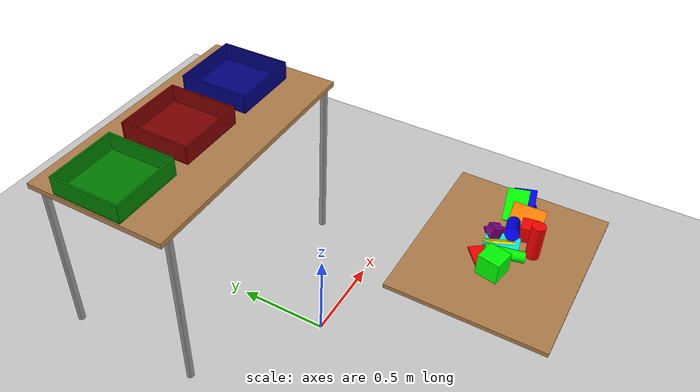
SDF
<sdf version="1.7">
 <world name="default">
  <light name="sun" type="directional">
   <pose>0 0 10 0 -0 0</pose>
   <diffuse>0.8 0.8 0.8 1</diffuse>
   <specular>0.2 0.2 0.2 1</specular>
   <attenuation>
    <range>1000</range>
    <constant>0.9</constant>
    <linear>0.01</linear>
    <quadratic>0.001</quadratic>
   </attenuation>
   <direction>-0.5 0.1 -0.9</direction>
   <spot><inner_angle>0</inner_angle><outer_angle>0</outer_angle><falloff>0</falloff></spot>
  </light>
  <model name="ground_plane">
   <static>1</static>
   <link name="link">
    <collision name="collision">
     <geometry><plane><normal>0 0 1</normal><size>100 100</size></plane></geometry>
     <surface><friction><ode><mu>100</mu><mu2>50</mu2></ode></friction></surface>
    </collision>
    <visual name="visual">
     <cast_shadows>0</cast_shadows>
     <geometry><plane><normal>0 0 1</normal><size>100 100</size></plane></geometry>
     <material>
      <script><uri>file://media/materials/scripts/gazebo.material</uri><name>Gazebo/Grey</name></script>
     </material>
    </visual>
   </link>
  </model>
  <gravity>0 0 -9.8</gravity>
  <magnetic_field>6e-06 2.3e-05 -4.2e-05</magnetic_field>
  <atmosphere type="adiabatic"/>
  <physics type="ode">
   <max_step_size>0.001</max_step_size>
   <real_time_factor>1</real_time_factor>
   <real_time_update_rate>1000</real_time_update_rate>
  </physics>
  <scene><ambient>0.4 0.4 0.4 1</ambient><background>0.7 0.7 0.7 1</background><shadows>1</shadows></scene>
  <audio><device>default</device></audio>
  <spherical_coordinates>
   <surface_model>EARTH_WGS84</surface_model>
   <latitude_deg>0</latitude_deg>
   <longitude_deg>0</longitude_deg>
   <elevation>0</elevation>
   <heading_deg>0</heading_deg>
  </spherical_coordinates>
  <model name="table">
   <static>1</static>
   <link name="link">
    <collision name="surface">
     <pose>0 0 1 0 -0 0</pose>
     <geometry><box><size>1.5 0.8 0.03</size></box></geometry>
     <surface>
      <friction><ode><mu>10</mu><mu2>5</mu2></ode></friction>
      <contact><ode><soft_cfm>0.0001</soft_cfm><soft_erp>0.4</soft_erp><kp>1e+06</kp><kd>10</kd></ode></contact>
     </surface>
    </collision>
    <visual name="visual1">
     <pose>0 0 1 0 -0 0</pose>
     <geometry><box><size>1.5 0.8 0.03</size></box></geometry>
     <material>
      <script><uri>file://media/materials/scripts/gazebo.material</uri><name>Gazebo/Wood</name></script>
     </material>
    </visual>
    <collision name="front_left_leg">
     <pose>0.68 0.38 0.5 0 -0 0</pose>
     <geometry><cylinder><radius>0.02</radius><length>1</length></cylinder></geometry>
    </collision>
    <visual name="front_left_leg">
     <pose>0.68 0.38 0.5 0 -0 0</pose>
     <geometry><cylinder><radius>0.02</radius><length>1</length></cylinder></geometry>
     <material>
      <script><uri>file://media/materials/scripts/gazebo.material</uri><name>Gazebo/Grey</name></script>
     </material>
    </visual>
    <collision name="front_right_leg">
     <pose>0.68 -0.38 0.5 0 -0 0</pose>
     <geometry><cylinder><radius>0.02</radius><length>1</length></cylinder></geometry>
    </collision>
    <visual name="front_right_leg">
     <pose>0.68 -0.38 0.5 0 -0 0</pose>
     <geometry><cylinder><radius>0.02</radius><length>1</length></cylinder></geometry>
     <material>
      <script><uri>file://media/materials/scripts/gazebo.material</uri><name>Gazebo/Grey</name></script>
     </material>
    </visual>
    <collision name="back_right_leg">
     <pose>-0.68 -0.38 0.5 0 -0 0</pose>
     <geometry><cylinder><radius>0.02</radius><length>1</length></cylinder></geometry>
    </collision>
    <visual name="back_right_leg">
     <pose>-0.68 -0.38 0.5 0 -0 0</pose>
     <geometry><cylinder><radius>0.02</radius><length>1</length></cylinder></geometry>
     <material>
      <script><uri>file://media/materials/scripts/gazebo.material</uri><name>Gazebo/Grey</name></script>
     </material>
    </visual>
    <collision name="back_left_leg">
     <pose>-0.68 0.38 0.5 0 -0 0</pose>
     <geometry><cylinder><radius>0.02</radius><length>1</length></cylinder></geometry>
    </collision>
    <visual name="back_left_leg">
     <pose>-0.68 0.38 0.5 0 -0 0</pose>
     <geometry><cylinder><radius>0.02</radius><length>1</length></cylinder></geometry>
     <material>
      <script><uri>file://media/materials/scripts/gazebo.material</uri><name>Gazebo/Grey</name></script>
     </material>
    </visual>
    <inertial>
     <inertia><ixx>1</ixx><ixy>0</ixy><ixz>0</ixz><iyy>1</iyy><iyz>0</iyz><izz>1</izz></inertia>
     <mass>50</mass>
    </inertial>
   </link>
   <pose>0.056083 0.801191 -1.2e-05 0 -0 2.5e-05</pose>
  </model>
  <plugin name="gazebo_link_attacher" filename="libgazebo_link_attacher.so"/>
  <plugin name="gazebo_ros_state" filename="libgazebo_ros_state.so">
   <namespace>/gazebo</namespace>
   <update_rate>100</update_rate>
  </plugin>
  <model name="cube_b">
   <link name="link_2">
    <inertial>
     <mass>2</mass>
     <inertia>
      <ixx>0.00083333</ixx>
      <ixy>0</ixy>
      <ixz>0</ixz>
      <iyy>0.00083333</iyy>
      <iyz>0</iyz>
      <izz>0.00083333</izz>
     </inertia>
    </inertial>
    <visual name="visual">
     <geometry><box><size>0.05 0.05 0.05</size></box></geometry>
     <material>
      <lighting>1</lighting>
      <script><uri>file://media/materials/scripts/gazebo.material</uri><name>Gazebo/Grey</name></script>
      <ambient>0 0 1 1</ambient>
      <diffuse>0 0 1 1</diffuse>
      <specular>0 0 0 1</specular>
      <emissive>0 0 0 1</emissive>
      <shader type="vertex"><normal_map>__default__</normal_map></shader>
     </material>
    </visual>
    <collision name="collision">
     <geometry><box><size>0.05 0.05 0.05</size></box></geometry>
     <surface>
      <friction>
       <ode><mu>0.8</mu><mu2>0.8</mu2><fdir1>0 0 0</fdir1><slip1>0</slip1><slip2>0</slip2></ode>
       <torsional>
        <coefficient>1</coefficient>
        <patch_radius>0</patch_radius>
        <surface_radius>0</surface_radius>
        <use_patch_radius>1</use_patch_radius>
        <ode><slip>0</slip></ode>
       </torsional>
      </friction>
      <bounce><restitution_coefficient>0</restitution_coefficient><threshold>1e+06</threshold></bounce>
      <contact>
       <collide_without_contact>0</collide_without_contact>
       <collide_without_contact_bitmask>1</collide_without_contact_bitmask>
       <collide_bitmask>1</collide_bitmask>
       <ode>
        <soft_cfm>0.0001</soft_cfm>
        <soft_erp>0.4</soft_erp>
        <kp>1e+06</kp>
        <kd>10</kd>
        <max_vel>0.01</max_vel>
        <min_depth>0</min_depth>
       </ode>
      </contact>
     </surface>
    </collision>
   </link>
   <static>0</static>
   <allow_auto_disable>0</allow_auto_disable>
   <pose>0.330733 -0.878025 1.02198 -2.45913 0.002548 -1.6654</pose>
  </model>
  <model name="cube_g">
   <link name="link_2">
    <inertial>
     <mass>2</mass>
     <inertia>
      <ixx>0.00333333</ixx>
      <iyy>0.00333333</iyy>
      <izz>0.00333333</izz>
      <ixy>0</ixy>
      <ixz>0</ixz>
      <iyz>0</iyz>
     </inertia>
    </inertial>
    <visual name="visual">
     <geometry><box><size>0.1 0.1 0.1</size></box></geometry>
     <material>
      <lighting>1</lighting>
      <script><uri>file://media/materials/scripts/gazebo.material</uri><name>Gazebo/Grey</name></script>
      <ambient>0 1 0 1</ambient>
      <diffuse>0 1 0 1</diffuse>
      <specular>0 0 0 1</specular>
      <emissive>0 0 0 1</emissive>
      <shader type="vertex"><normal_map>__default__</normal_map></shader>
     </material>
    </visual>
    <collision name="collision">
     <geometry><box><size>0.1 0.1 0.1</size></box></geometry>
     <surface>
      <friction>
       <ode><mu>0.8</mu><mu2>0.8</mu2><fdir1>0 0 0</fdir1><slip1>0</slip1><slip2>0</slip2></ode>
       <torsional>
        <coefficient>1</coefficient>
        <patch_radius>0</patch_radius>
        <surface_radius>0</surface_radius>
        <use_patch_radius>1</use_patch_radius>
        <ode><slip>0</slip></ode>
       </torsional>
      </friction>
      <bounce><restitution_coefficient>0</restitution_coefficient><threshold>1e+06</threshold></bounce>
      <contact>
       <collide_without_contact>0</collide_without_contact>
       <collide_without_contact_bitmask>1</collide_without_contact_bitmask>
       <collide_bitmask>1</collide_bitmask>
       <ode>
        <soft_cfm>0.0001</soft_cfm>
        <soft_erp>0.4</soft_erp>
        <kp>1e+06</kp>
        <kd>10</kd>
        <max_vel>0.01</max_vel>
        <min_depth>0</min_depth>
       </ode>
      </contact>
     </surface>
    </collision>
   </link>
   <static>0</static>
   <allow_auto_disable>0</allow_auto_disable>
   <pose>-0.099374 -0.869387 1.045 0.002717 0.003495 -1.76675</pose>
  </model>
  <model name="cube_r">
   <link name="link_2">
    <inertial>
     <mass>2</mass>
     <inertia>
      <ixx>0.001875</ixx>
      <ixy>0</ixy>
      <ixz>0</ixz>
      <iyy>0.001875</iyy>
      <iyz>0</iyz>
      <izz>0.001875</izz>
     </inertia>
    </inertial>
    <visual name="visual">
     <geometry><box><size>0.075 0.075 0.075</size></box></geometry>
     <material>
      <lighting>1</lighting>
      <script><uri>file://media/materials/scripts/gazebo.material</uri><name>Gazebo/Grey</name></script>
      <ambient>1 0 0 1</ambient>
      <diffuse>1 0 0 1</diffuse>
      <specular>0 0 0 1</specular>
      <emissive>0 0 0 1</emissive>
      <shader type="vertex"><normal_map>__default__</normal_map></shader>
     </material>
    </visual>
    <collision name="collision">
     <geometry><box><size>0.075 0.075 0.075</size></box></geometry>
     <surface>
      <friction>
       <ode><mu>0.8</mu><mu2>0.8</mu2><fdir1>0 0 0</fdir1><slip1>0</slip1><slip2>0</slip2></ode>
       <torsional>
        <coefficient>1</coefficient>
        <patch_radius>0</patch_radius>
        <surface_radius>0</surface_radius>
        <use_patch_radius>1</use_patch_radius>
        <ode><slip>0</slip></ode>
       </torsional>
      </friction>
      <bounce><restitution_coefficient>0</restitution_coefficient><threshold>1e+06</threshold></bounce>
      <contact>
       <collide_without_contact>0</collide_without_contact>
       <collide_without_contact_bitmask>1</collide_without_contact_bitmask>
       <collide_bitmask>1</collide_bitmask>
       <ode>
        <soft_cfm>0.0001</soft_cfm>
        <soft_erp>0.4</soft_erp>
        <kp>1e+06</kp>
        <kd>10</kd>
        <max_vel>0.01</max_vel>
        <min_depth>0</min_depth>
       </ode>
      </contact>
     </surface>
    </collision>
   </link>
   <static>0</static>
   <allow_auto_disable>0</allow_auto_disable>
   <pose>0.187375 -0.928799 1.02377 -3.14115 -0.004198 0.166777</pose>
  </model>
  <model name="cylinder_r">
   <link name="link_0">
    <inertial>
     <mass>0.2</mass>
     <inertia>
      <ixx>0.0005267</ixx>
      <ixy>0</ixy>
      <ixz>0</ixz>
      <iyy>0.0005267</iyy>
      <iyz>0</iyz>
      <izz>9e-05</izz>
     </inertia>
    </inertial>
    <visual name="visual">
     <geometry><cylinder><radius>0.03</radius><length>0.17</length></cylinder></geometry>
     <material>
      <lighting>1</lighting>
      <script><uri>file://media/materials/scripts/gazebo.material</uri><name>Gazebo/Grey</name></script>
      <ambient>1 0 0 1</ambient>
      <diffuse>1 0 0 1</diffuse>
      <specular>0 0 0 1</specular>
      <emissive>0 0 0 1</emissive>
      <shader type="vertex"><normal_map>__default__</normal_map></shader>
     </material>
    </visual>
    <collision name="collision">
     <geometry><cylinder><radius>0.03</radius><length>0.17</length></cylinder></geometry>
     <surface>
      <friction>
       <ode><mu>0.5</mu><mu2>0.5</mu2><fdir1>0 0 0</fdir1><slip1>0</slip1><slip2>0</slip2></ode>
       <torsional>
        <coefficient>1</coefficient>
        <patch_radius>0</patch_radius>
        <surface_radius>0</surface_radius>
        <use_patch_radius>1</use_patch_radius>
        <ode><slip>0</slip></ode>
       </torsional>
      </friction>
      <bounce><restitution_coefficient>0</restitution_coefficient><threshold>1e+06</threshold></bounce>
      <contact>
       <collide_without_contact>0</collide_without_contact>
       <collide_without_contact_bitmask>1</collide_without_contact_bitmask>
       <collide_bitmask>1</collide_bitmask>
       <ode>
        <soft_cfm>0.0001</soft_cfm>
        <soft_erp>0.4</soft_erp>
        <kp>1e+06</kp>
        <kd>10</kd>
        <max_vel>0.01</max_vel>
        <min_depth>0</min_depth>
       </ode>
      </contact>
     </surface>
    </collision>
   </link>
   <static>0</static>
   <allow_auto_disable>0</allow_auto_disable>
   <pose>0.08945 -0.98157 1.07081 -0.003488 -0.002527 1.2082</pose>
  </model>
  <model name="cylinder_b">
   <link name="link_0">
    <inertial>
     <mass>0.2</mass>
     <inertia>
      <ixx>0.0005267</ixx>
      <ixy>0</ixy>
      <ixz>0</ixz>
      <iyy>0.0005267</iyy>
      <iyz>0</iyz>
      <izz>9e-05</izz>
     </inertia>
    </inertial>
    <visual name="visual">
     <geometry><cylinder><radius>0.03</radius><length>0.17</length></cylinder></geometry>
     <material>
      <lighting>1</lighting>
      <ambient>0 0 1 1</ambient>
      <diffuse>0 0 1 1</diffuse>
      <specular>0.1 0.1 0.1 1</specular>
      <emissive>0 0 0 1</emissive>
      <shader type="vertex"><normal_map>__default__</normal_map></shader>
     </material>
    </visual>
    <collision name="collision">
     <geometry><cylinder><radius>0.03</radius><length>0.17</length></cylinder></geometry>
     <surface>
      <friction>
       <ode><mu>0.4</mu><mu2>0.4</mu2><fdir1>0 0 0</fdir1><slip1>0</slip1><slip2>0</slip2></ode>
       <torsional>
        <coefficient>1</coefficient>
        <patch_radius>0</patch_radius>
        <surface_radius>0</surface_radius>
        <use_patch_radius>1</use_patch_radius>
        <ode><slip>0</slip></ode>
       </torsional>
      </friction>
      <bounce><restitution_coefficient>0</restitution_coefficient><threshold>1e+06</threshold></bounce>
      <contact>
       <collide_without_contact>0</collide_without_contact>
       <collide_without_contact_bitmask>1</collide_without_contact_bitmask>
       <collide_bitmask>1</collide_bitmask>
       <ode>
        <soft_cfm>0.0001</soft_cfm>
        <soft_erp>0.4</soft_erp>
        <kp>1e+06</kp>
        <kd>10</kd>
        <max_vel>0.01</max_vel>
        <min_depth>0</min_depth>
       </ode>
      </contact>
     </surface>
    </collision>
   </link>
   <static>0</static>
   <allow_auto_disable>0</allow_auto_disable>
   <pose>0.13914 -0.868422 1.04845 -3.09774 1.15074 -2.86897</pose>
  </model>
  <model name="cylinder_g">
   <link name="link_0">
    <inertial>
     <mass>0.2</mass>
     <inertia>
      <ixx>0.0005129</ixx>
      <ixy>0</ixy>
      <ixz>0</ixz>
      <iyy>0.0005129</iyy>
      <iyz>0</iyz>
      <izz>6.25e-05</izz>
     </inertia>
    </inertial>
    <visual name="visual">
     <geometry><cylinder><radius>0.025</radius><length>0.17</length></cylinder></geometry>
     <material>
      <lighting>1</lighting>
      <ambient>0 1 0 1</ambient>
      <diffuse>0 1 0 1</diffuse>
      <specular>0.1 0.1 0.1 1</specular>
      <emissive>0 0 0 1</emissive>
      <shader type="vertex"><normal_map>__default__</normal_map></shader>
     </material>
    </visual>
    <collision name="collision">
     <geometry><cylinder><radius>0.025</radius><length>0.17</length></cylinder></geometry>
     <surface>
      <friction>
       <ode><mu>0.5</mu><mu2>0.5</mu2><fdir1>0 0 0</fdir1><slip1>0</slip1><slip2>0</slip2></ode>
       <torsional>
        <coefficient>1</coefficient>
        <patch_radius>0</patch_radius>
        <surface_radius>0</surface_radius>
        <use_patch_radius>1</use_patch_radius>
        <ode><slip>0</slip></ode>
       </torsional>
      </friction>
      <bounce><restitution_coefficient>0</restitution_coefficient><threshold>1e+06</threshold></bounce>
      <contact>
       <collide_without_contact>0</collide_without_contact>
       <collide_without_contact_bitmask>1</collide_without_contact_bitmask>
       <collide_bitmask>1</collide_bitmask>
       <ode>
        <soft_cfm>0.0001</soft_cfm>
        <soft_erp>0.4</soft_erp>
        <kp>1e+06</kp>
        <kd>10</kd>
        <max_vel>0.01</max_vel>
        <min_depth>0</min_depth>
       </ode>
      </contact>
     </surface>
    </collision>
   </link>
   <static>0</static>
   <allow_auto_disable>0</allow_auto_disable>
   <pose>0.010341 -0.883497 1.01755 1.4875 -0.092982 -2.85356</pose>
  </model>
  <model name="cuboid_r">
   <link name="link">
    <inertial>
     <mass>2</mass>
     <inertia>
      <ixx>0.001683</ixx>
      <iyy>0.003767</iyy>
      <izz>0.005417</izz>
      <ixy>0</ixy>
      <ixz>0</ixz>
      <iyz>0</iyz>
     </inertia>
    </inertial>
    <visual name="visual">
     <geometry><box><size>0.15 0.1 0.01</size></box></geometry>
     <material><ambient>1 0 0 1</ambient><diffuse>1 0 0 1</diffuse><specular>0.1 0.1 0.1 1</specular></material>
    </visual>
    <collision name="collision">
     <geometry><box><size>0.15 0.1 0.01</size></box></geometry>
     <surface>
      <friction>
       <ode><mu>0.6</mu><mu2>0.6</mu2><fdir1>0 0 0</fdir1><slip1>0</slip1><slip2>0</slip2></ode>
       <torsional>
        <coefficient>1</coefficient>
        <patch_radius>0</patch_radius>
        <surface_radius>0</surface_radius>
        <use_patch_radius>1</use_patch_radius>
        <ode><slip>0</slip></ode>
       </torsional>
      </friction>
      <bounce><restitution_coefficient>0</restitution_coefficient><threshold>1e+06</threshold></bounce>
      <contact>
       <collide_without_contact>0</collide_without_contact>
       <collide_without_contact_bitmask>1</collide_without_contact_bitmask>
       <collide_bitmask>1</collide_bitmask>
       <ode>
        <soft_cfm>0.0001</soft_cfm>
        <soft_erp>0.4</soft_erp>
        <kp>1e+06</kp>
        <kd>10</kd>
        <max_vel>0.01</max_vel>
        <min_depth>0</min_depth>
       </ode>
      </contact>
     </surface>
    </collision>
   </link>
   <static>0</static>
   <allow_auto_disable>0</allow_auto_disable>
   <pose>-0.036416 -0.815225 0.990361 3.3e-05 0.00373 -2.45569</pose>
  </model>
  <model name="cuboid_g">
   <link name="link">
    <inertial>
     <mass>2</mass>
     <inertia>
      <ixx>0.001683</ixx>
      <iyy>0.003767</iyy>
      <izz>0.005417</izz>
      <ixy>0</ixy>
      <ixz>0</ixz>
      <iyz>0</iyz>
     </inertia>
    </inertial>
    <visual name="visual">
     <geometry><box><size>0.15 0.1 0.01</size></box></geometry>
     <material><ambient>0 1 0 1</ambient><diffuse>0 1 0 1</diffuse><specular>0.1 0.1 0.1 1</specular></material>
    </visual>
    <collision name="collision">
     <geometry><box><size>0.15 0.1 0.01</size></box></geometry>
     <surface>
      <friction>
       <ode><mu>0.6</mu><mu2>0.6</mu2><fdir1>0 0 0</fdir1><slip1>0</slip1><slip2>0</slip2></ode>
       <torsional>
        <coefficient>1</coefficient>
        <patch_radius>0</patch_radius>
        <surface_radius>0</surface_radius>
        <use_patch_radius>1</use_patch_radius>
        <ode><slip>0</slip></ode>
       </torsional>
      </friction>
      <bounce><restitution_coefficient>0</restitution_coefficient><threshold>1e+06</threshold></bounce>
      <contact>
       <collide_without_contact>0</collide_without_contact>
       <collide_without_contact_bitmask>1</collide_without_contact_bitmask>
       <collide_bitmask>1</collide_bitmask>
       <ode>
        <soft_cfm>0.0001</soft_cfm>
        <soft_erp>0.4</soft_erp>
        <kp>1e+06</kp>
        <kd>10</kd>
        <max_vel>0.01</max_vel>
        <min_depth>0</min_depth>
       </ode>
      </contact>
     </surface>
    </collision>
   </link>
   <static>0</static>
   <allow_auto_disable>0</allow_auto_disable>
   <pose>0.297583 -0.827856 1.04362 -2.96329 0.662651 -2.92437</pose>
  </model>
  <model name="cuboid_b">
   <link name="link">
    <inertial>
     <mass>2</mass>
     <inertia>
      <ixx>0.001683</ixx>
      <iyy>0.003767</iyy>
      <izz>0.005417</izz>
      <ixy>0</ixy>
      <ixz>0</ixz>
      <iyz>0</iyz>
     </inertia>
    </inertial>
    <visual name="visual">
     <geometry><box><size>0.15 0.1 0.01</size></box></geometry>
     <material><ambient>0 0 1 1</ambient><diffuse>0 0 1 1</diffuse><specular>0.1 0.1 0.1 1</specular></material>
    </visual>
    <collision name="collision">
     <geometry><box><size>0.15 0.1 0.01</size></box></geometry>
     <surface>
      <friction>
       <ode><mu>0.6</mu><mu2>0.6</mu2><fdir1>0 0 0</fdir1><slip1>0</slip1><slip2>0</slip2></ode>
       <torsional>
        <coefficient>1</coefficient>
        <patch_radius>0</patch_radius>
        <surface_radius>0</surface_radius>
        <use_patch_radius>1</use_patch_radius>
        <ode><slip>0</slip></ode>
       </torsional>
      </friction>
      <bounce><restitution_coefficient>0</restitution_coefficient><threshold>1e+06</threshold></bounce>
      <contact>
       <collide_without_contact>0</collide_without_contact>
       <collide_without_contact_bitmask>1</collide_without_contact_bitmask>
       <collide_bitmask>1</collide_bitmask>
       <ode>
        <soft_cfm>0.0001</soft_cfm>
        <soft_erp>0.4</soft_erp>
        <kp>1e+06</kp>
        <kd>10</kd>
        <max_vel>0.01</max_vel>
        <min_depth>0</min_depth>
       </ode>
      </contact>
     </surface>
    </collision>
   </link>
   <static>0</static>
   <allow_auto_disable>0</allow_auto_disable>
   <pose>0.313383 -0.854866 1.04476 2.9265 -0.656147 0.252008</pose>
  </model>
  <model name="cuboid_purple">
   <link name="link">
    <inertial>
     <mass>2</mass>
     <inertia>
      <ixx>0.001683</ixx>
      <iyy>0.003767</iyy>
      <izz>0.005417</izz>
      <ixy>0</ixy>
      <ixz>0</ixz>
      <iyz>0</iyz>
     </inertia>
    </inertial>
    <visual name="visual">
     <geometry><box><size>0.15 0.1 0.01</size></box></geometry>
     <material>
      <ambient>0.5 0 0.5 1</ambient>
      <diffuse>0.5 0 0.5 1</diffuse>
      <specular>0.1 0.1 0.1 1</specular>
     </material>
    </visual>
    <collision name="collision">
     <geometry><box><size>0.15 0.1 0.01</size></box></geometry>
     <surface>
      <friction>
       <ode><mu>0.6</mu><mu2>0.6</mu2><fdir1>0 0 0</fdir1><slip1>0</slip1><slip2>0</slip2></ode>
       <torsional>
        <coefficient>1</coefficient>
        <patch_radius>0</patch_radius>
        <surface_radius>0</surface_radius>
        <use_patch_radius>1</use_patch_radius>
        <ode><slip>0</slip></ode>
       </torsional>
      </friction>
      <bounce><restitution_coefficient>0</restitution_coefficient><threshold>1e+06</threshold></bounce>
      <contact>
       <collide_without_contact>0</collide_without_contact>
       <collide_without_contact_bitmask>1</collide_without_contact_bitmask>
       <collide_bitmask>1</collide_bitmask>
       <ode>
        <soft_cfm>0.0001</soft_cfm>
        <soft_erp>0.4</soft_erp>
        <kp>1e+06</kp>
        <kd>10</kd>
        <max_vel>0.01</max_vel>
        <min_depth>0</min_depth>
       </ode>
      </contact>
     </surface>
    </collision>
   </link>
   <static>0</static>
   <allow_auto_disable>0</allow_auto_disable>
   <pose>0.104007 -0.8268 0.995924 -0.098044 0.002228 -2.54408</pose>
  </model>
  <model name="cuboid_orange">
   <link name="link">
    <inertial>
     <mass>2</mass>
     <inertia>
      <ixx>0.001683</ixx>
      <iyy>0.003767</iyy>
      <izz>0.005417</izz>
      <ixy>0</ixy>
      <ixz>0</ixz>
      <iyz>0</iyz>
     </inertia>
    </inertial>
    <visual name="visual">
     <geometry><box><size>0.15 0.1 0.01</size></box></geometry>
     <material>
      <ambient>1 0.5 0 1</ambient>
      <diffuse>1 0.5 0 1</diffuse>
      <specular>0.1 0.1 0.1 1</specular>
     </material>
    </visual>
    <collision name="collision">
     <geometry><box><size>0.15 0.1 0.01</size></box></geometry>
     <surface>
      <friction>
       <ode><mu>0.6</mu><mu2>0.6</mu2><fdir1>0 0 0</fdir1><slip1>0</slip1><slip2>0</slip2></ode>
       <torsional>
        <coefficient>1</coefficient>
        <patch_radius>0</patch_radius>
        <surface_radius>0</surface_radius>
        <use_patch_radius>1</use_patch_radius>
        <ode><slip>0</slip></ode>
       </torsional>
      </friction>
      <bounce><restitution_coefficient>0</restitution_coefficient><threshold>1e+06</threshold></bounce>
      <contact>
       <collide_without_contact>0</collide_without_contact>
       <collide_without_contact_bitmask>1</collide_without_contact_bitmask>
       <collide_bitmask>1</collide_bitmask>
       <ode>
        <soft_cfm>0.0001</soft_cfm>
        <soft_erp>0.4</soft_erp>
        <kp>1e+06</kp>
        <kd>10</kd>
        <max_vel>0.01</max_vel>
        <min_depth>0</min_depth>
       </ode>
      </contact>
     </surface>
    </collision>
   </link>
   <static>0</static>
   <allow_auto_disable>0</allow_auto_disable>
   <pose>0.262888 -0.894497 1.02903 2.48367 -0.110194 1.73807</pose>
  </model>
  <model name="cuboid_yellow">
   <link name="link">
    <inertial>
     <mass>2</mass>
     <inertia>
      <ixx>0.001683</ixx>
      <iyy>0.003767</iyy>
      <izz>0.005417</izz>
      <ixy>0</ixy>
      <ixz>0</ixz>
      <iyz>0</iyz>
     </inertia>
    </inertial>
    <visual name="visual">
     <geometry><box><size>0.15 0.1 0.01</size></box></geometry>
     <material><ambient>1 1 0 1</ambient><diffuse>1 1 0 1</diffuse><specular>0.1 0.1 0.1 1</specular></material>
    </visual>
    <collision name="collision">
     <geometry><box><size>0.15 0.1 0.01</size></box></geometry>
     <surface>
      <friction>
       <ode><mu>0.6</mu><mu2>0.6</mu2><fdir1>0 0 0</fdir1><slip1>0</slip1><slip2>0</slip2></ode>
       <torsional>
        <coefficient>1</coefficient>
        <patch_radius>0</patch_radius>
        <surface_radius>0</surface_radius>
        <use_patch_radius>1</use_patch_radius>
        <ode><slip>0</slip></ode>
       </torsional>
      </friction>
      <bounce><restitution_coefficient>0</restitution_coefficient><threshold>1e+06</threshold></bounce>
      <contact>
       <collide_without_contact>0</collide_without_contact>
       <collide_without_contact_bitmask>1</collide_without_contact_bitmask>
       <collide_bitmask>1</collide_bitmask>
       <ode>
        <soft_cfm>0.0001</soft_cfm>
        <soft_erp>0.4</soft_erp>
        <kp>1e+06</kp>
        <kd>10</kd>
        <max_vel>0.01</max_vel>
        <min_depth>0</min_depth>
       </ode>
      </contact>
     </surface>
    </collision>
   </link>
   <static>0</static>
   <allow_auto_disable>0</allow_auto_disable>
   <pose>0.014395 -0.848743 1.06543 -0.127874 -0.689085 -2.53236</pose>
  </model>
  <model name="cuboid_cyan">
   <link name="link">
    <inertial>
     <mass>2</mass>
     <inertia>
      <ixx>0.001683</ixx>
      <iyy>0.003767</iyy>
      <izz>0.005417</izz>
      <ixy>0</ixy>
      <ixz>0</ixz>
      <iyz>0</iyz>
     </inertia>
    </inertial>
    <visual name="visual">
     <geometry><box><size>0.15 0.1 0.01</size></box></geometry>
     <material><ambient>0 1 1 1</ambient><diffuse>0 1 1 1</diffuse><specular>0.1 0.1 0.1 1</specular></material>
    </visual>
    <collision name="collision">
     <geometry><box><size>0.15 0.1 0.01</size></box></geometry>
     <surface>
      <friction>
       <ode><mu>0.6</mu><mu2>0.6</mu2><fdir1>0 0 0</fdir1><slip1>0</slip1><slip2>0</slip2></ode>
       <torsional>
        <coefficient>1</coefficient>
        <patch_radius>0</patch_radius>
        <surface_radius>0</surface_radius>
        <use_patch_radius>1</use_patch_radius>
        <ode><slip>0</slip></ode>
       </torsional>
      </friction>
      <bounce><restitution_coefficient>0</restitution_coefficient><threshold>1e+06</threshold></bounce>
      <contact>
       <collide_without_contact>0</collide_without_contact>
       <collide_without_contact_bitmask>1</collide_without_contact_bitmask>
       <collide_bitmask>1</collide_bitmask>
       <ode>
        <soft_cfm>0.0001</soft_cfm>
        <soft_erp>0.4</soft_erp>
        <kp>1e+06</kp>
        <kd>10</kd>
        <max_vel>0.01</max_vel>
        <min_depth>0</min_depth>
       </ode>
      </contact>
     </surface>
    </collision>
   </link>
   <static>0</static>
   <allow_auto_disable>0</allow_auto_disable>
   <pose>0.084491 -0.846328 1.00527 -0.038497 0.090248 -1.40038</pose>
  </model>
  <model name="workspace">
   <link name="link">
    <inertial>
     <mass>100</mass>
     <inertia><ixx>6.02417</ixx><ixy>0</ixy><ixz>0</ixz><iyy>4.08667</iyy><iyz>0</iyz><izz>10.1042</izz></inertia>
    </inertial>
    <visual name="visual">
     <geometry><box><size>0.7 0.85 0.02</size></box></geometry>
     <material>
      <script><name>Gazebo/Wood</name><uri>file://media/materials/scripts/gazebo.material</uri></script>
      <shader type="pixel"/>
     </material>
    </visual>
    <collision name="collision">
     <geometry><box><size>0.7 0.85 0.02</size></box></geometry>
     <surface>
      <friction>
       <ode><mu>100</mu><mu2>50</mu2><fdir1>0 0 0</fdir1><slip1>0</slip1><slip2>0</slip2></ode>
       <torsional>
        <coefficient>1</coefficient>
        <patch_radius>0</patch_radius>
        <surface_radius>0</surface_radius>
        <use_patch_radius>1</use_patch_radius>
        <ode><slip>0</slip></ode>
       </torsional>
      </friction>
      <bounce><restitution_coefficient>0</restitution_coefficient><threshold>1e+06</threshold></bounce>
      <contact>
       <collide_without_contact>0</collide_without_contact>
       <collide_without_contact_bitmask>1</collide_without_contact_bitmask>
       <collide_bitmask>1</collide_bitmask>
       <ode>
        <soft_cfm>0.0001</soft_cfm>
        <soft_erp>0.2</soft_erp>
        <kp>1e+13</kp>
        <kd>10</kd>
        <max_vel>0.01</max_vel>
        <min_depth>0</min_depth>
       </ode>
       <bullet>
        <split_impulse>1</split_impulse>
        <split_impulse_penetration_threshold>-0.01</split_impulse_penetration_threshold>
        <soft_cfm>0</soft_cfm>
        <soft_erp>0.2</soft_erp>
        <kp>1e+13</kp>
        <kd>1</kd>
       </bullet>
      </contact>
     </surface>
    </collision>
   </link>
   <static>1</static>
   <pose>0.0416 -0.859914 0.975746 -0.004154 -0.001127 1.57039</pose>
  </model>
  <model name="tray_red">
   <static>1</static>
   <link name="link">
    <collision name="base_collision">
     <pose>0 0 0.01 0 -0 0</pose>
     <geometry><box><size>0.4 0.4 0.01</size></box></geometry>
     <surface><contact><ode><mu>50</mu><mu2>50</mu2></ode></contact></surface>
    </collision>
    <visual name="base_visual">
     <pose>0 0 0.01 0 -0 0</pose>
     <geometry><box><size>0.4 0.4 0.01</size></box></geometry>
     <material>
      <ambient>1 0 0 1</ambient>
      <diffuse>0.5 0 0 1</diffuse>
      <specular>0 0 0 1</specular>
      <emissive>0 0 0 1</emissive>
      <shininess>100</shininess>
     </material>
    </visual>
    <collision name="front_collision">
     <pose>0 0.195 0.06 0 -0 0</pose>
     <geometry><box><size>0.4 0.01 0.1</size></box></geometry>
    </collision>
    <visual name="front_visual">
     <pose>0 0.195 0.06 0 -0 0</pose>
     <geometry><box><size>0.4 0.01 0.1</size></box></geometry>
     <material>
      <ambient>1 0 0 1</ambient>
      <diffuse>0.5 0 0 1</diffuse>
      <specular>0 0 0 1</specular>
      <emissive>0 0 0 1</emissive>
     </material>
    </visual>
    <collision name="back_collision">
     <pose>0 -0.195 0.06 0 -0 0</pose>
     <geometry><box><size>0.4 0.01 0.1</size></box></geometry>
    </collision>
    <visual name="back_visual">
     <pose>0 -0.195 0.06 0 -0 0</pose>
     <geometry><box><size>0.4 0.01 0.1</size></box></geometry>
     <material>
      <ambient>1 0 0 1</ambient>
      <diffuse>0.5 0 0 1</diffuse>
      <specular>0 0 0 1</specular>
      <emissive>0 0 0 1</emissive>
     </material>
    </visual>
    <collision name="left_collision">
     <pose>0.195 0 0.06 0 -0 0</pose>
     <geometry><box><size>0.01 0.4 0.1</size></box></geometry>
    </collision>
    <visual name="left_visual">
     <pose>0.195 0 0.06 0 -0 0</pose>
     <geometry><box><size>0.01 0.4 0.1</size></box></geometry>
     <material>
      <ambient>1 0 0 1</ambient>
      <diffuse>0.5 0 0 1</diffuse>
      <specular>0 0 0 1</specular>
      <emissive>0 0 0 1</emissive>
     </material>
    </visual>
    <collision name="right_collision">
     <pose>-0.195 0 0.06 0 -0 0</pose>
     <geometry><box><size>0.01 0.4 0.1</size></box></geometry>
    </collision>
    <visual name="right_visual">
     <pose>-0.195 0 0.06 0 -0 0</pose>
     <geometry><box><size>0.01 0.4 0.1</size></box></geometry>
     <material>
      <ambient>1 0 0 1</ambient>
      <diffuse>0.5 0 0 1</diffuse>
      <specular>0 0 0 1</specular>
      <emissive>0 0 0 1</emissive>
     </material>
    </visual>
    <inertial>
     <inertia><ixx>1</ixx><ixy>0</ixy><ixz>0</ixz><iyy>1</iyy><iyz>0</iyz><izz>1</izz></inertia>
     <mass>1</mass>
    </inertial>
   </link>
   <pose>0.003367 0.836815 1.00999 0 -0 0</pose>
  </model>
  <model name="tray_green">
   <static>1</static>
   <link name="link">
    <collision name="base_collision">
     <pose>0 0 0.01 0 -0 0</pose>
     <geometry><box><size>0.4 0.4 0.01</size></box></geometry>
     <surface><contact><ode><mu>50</mu><mu2>50</mu2></ode></contact></surface>
    </collision>
    <visual name="base_visual">
     <pose>0 0 0.01 0 -0 0</pose>
     <geometry><box><size>0.4 0.4 0.01</size></box></geometry>
     <material><ambient>0 1 0 1</ambient><diffuse>0 0.5 0 1</diffuse></material>
    </visual>
    <collision name="front_collision">
     <pose>0 0.195 0.06 0 -0 0</pose>
     <geometry><box><size>0.4 0.01 0.1</size></box></geometry>
    </collision>
    <visual name="front_visual">
     <pose>0 0.195 0.06 0 -0 0</pose>
     <geometry><box><size>0.4 0.01 0.1</size></box></geometry>
     <material><ambient>0 1 0 1</ambient><diffuse>0 0.5 0 1</diffuse></material>
    </visual>
    <collision name="back_collision">
     <pose>0 -0.195 0.06 0 -0 0</pose>
     <geometry><box><size>0.4 0.01 0.1</size></box></geometry>
    </collision>
    <visual name="back_visual">
     <pose>0 -0.195 0.06 0 -0 0</pose>
     <geometry><box><size>0.4 0.01 0.1</size></box></geometry>
     <material><ambient>0 1 0 1</ambient><diffuse>0 0.5 0 1</diffuse></material>
    </visual>
    <collision name="left_collision">
     <pose>0.195 0 0.06 0 -0 0</pose>
     <geometry><box><size>0.01 0.4 0.1</size></box></geometry>
    </collision>
    <visual name="left_visual">
     <pose>0.195 0 0.06 0 -0 0</pose>
     <geometry><box><size>0.01 0.4 0.1</size></box></geometry>
     <material><ambient>0 1 0 1</ambient><diffuse>0 0.5 0 1</diffuse></material>
    </visual>
    <collision name="right_collision">
     <pose>-0.195 0 0.06 0 -0 0</pose>
     <geometry><box><size>0.01 0.4 0.1</size></box></geometry>
    </collision>
    <visual name="right_visual">
     <pose>-0.195 0 0.06 0 -0 0</pose>
     <geometry><box><size>0.01 0.4 0.1</size></box></geometry>
     <material><ambient>0 1 0 1</ambient><diffuse>0 0.5 0 1</diffuse></material>
    </visual>
    <inertial>
     <inertia><ixx>1</ixx><ixy>0</ixy><ixz>0</ixz><iyy>1</iyy><iyz>0</iyz><izz>1</izz></inertia>
     <mass>1</mass>
    </inertial>
   </link>
   <pose>-0.487214 0.834657 1.00999 0 -0 0</pose>
  </model>
  <model name="tray_blue">
   <static>1</static>
   <link name="link">
    <collision name="base_collision">
     <pose>0 0 0.01 0 -0 0</pose>
     <geometry><box><size>0.4 0.4 0.01</size></box></geometry>
     <surface><contact><ode><mu>50</mu><mu2>50</mu2></ode></contact></surface>
    </collision>
    <visual name="base_visual">
     <pose>0 0 0.01 0 -0 0</pose>
     <geometry><box><size>0.4 0.4 0.01</size></box></geometry>
     <material><ambient>0 0 1 1</ambient><diffuse>0 0 0.5 1</diffuse></material>
    </visual>
    <collision name="front_collision">
     <pose>0 0.195 0.06 0 -0 0</pose>
     <geometry><box><size>0.4 0.01 0.1</size></box></geometry>
    </collision>
    <visual name="front_visual">
     <pose>0 0.195 0.06 0 -0 0</pose>
     <geometry><box><size>0.4 0.01 0.1</size></box></geometry>
     <material><ambient>0 0 1 1</ambient><diffuse>0 0 0.5 1</diffuse></material>
    </visual>
    <collision name="back_collision">
     <pose>0 -0.195 0.06 0 -0 0</pose>
     <geometry><box><size>0.4 0.01 0.1</size></box></geometry>
    </collision>
    <visual name="back_visual">
     <pose>0 -0.195 0.06 0 -0 0</pose>
     <geometry><box><size>0.4 0.01 0.1</size></box></geometry>
     <material><ambient>0 0 1 1</ambient><diffuse>0 0 0.5 1</diffuse></material>
    </visual>
    <collision name="left_collision">
     <pose>0.195 0 0.06 0 -0 0</pose>
     <geometry><box><size>0.01 0.4 0.1</size></box></geometry>
    </collision>
    <visual name="left_visual">
     <pose>0.195 0 0.06 0 -0 0</pose>
     <geometry><box><size>0.01 0.4 0.1</size></box></geometry>
     <material><ambient>0 0 1 1</ambient><diffuse>0 0 0.5 1</diffuse></material>
    </visual>
    <collision name="right_collision">
     <pose>-0.195 0 0.06 0 -0 0</pose>
     <geometry><box><size>0.01 0.4 0.1</size></box></geometry>
    </collision>
    <visual name="right_visual">
     <pose>-0.195 0 0.06 0 -0 0</pose>
     <geometry><box><size>0.01 0.4 0.1</size></box></geometry>
     <material><ambient>0 0 1 1</ambient><diffuse>0 0 0.5 1</diffuse></material>
    </visual>
    <inertial>
     <inertia><ixx>1</ixx><ixy>0</ixy><ixz>0</ixz><iyy>1</iyy><iyz>0</iyz><izz>1</izz></inertia>
     <mass>1</mass>
    </inertial>
   </link>
   <pose>0.500589 0.844197 1.00999 0 -0 0</pose>
  </model>
  <model name="cube_purple">
   <link name="link_2">
    <inertial>
     <mass>2</mass>
     <inertia>
      <ixx>0.00083333</ixx>
      <ixy>0</ixy>
      <ixz>0</ixz>
      <iyy>0.00083333</iyy>
      <iyz>0</iyz>
      <izz>0.00083333</izz>
     </inertia>
    </inertial>
    <visual name="visual">
     <geometry><box><size>0.05 0.05 0.05</size></box></geometry>
     <material>
      <lighting>1</lighting>
      <script><uri>file://media/materials/scripts/gazebo.material</uri><name>Gazebo/Grey</name></script>
      <ambient>0.5 0 0.5 1</ambient>
      <diffuse>0.5 0 0.5 1</diffuse>
      <specular>0.1 0.1 0.1 1</specular>
      <emissive>0 0 0 1</emissive>
      <shader type="vertex"><normal_map>__default__</normal_map></shader>
     </material>
    </visual>
    <collision name="collision">
     <geometry><box><size>0.05 0.05 0.05</size></box></geometry>
     <surface>
      <friction>
       <ode><mu>0.8</mu><mu2>0.8</mu2><fdir1>0 0 0</fdir1><slip1>0</slip1><slip2>0</slip2></ode>
       <torsional>
        <coefficient>1</coefficient>
        <patch_radius>0</patch_radius>
        <surface_radius>0</surface_radius>
        <use_patch_radius>1</use_patch_radius>
        <ode><slip>0</slip></ode>
       </torsional>
      </friction>
      <bounce><restitution_coefficient>0</restitution_coefficient><threshold>1e+06</threshold></bounce>
      <contact>
       <collide_without_contact>0</collide_without_contact>
       <collide_without_contact_bitmask>1</collide_without_contact_bitmask>
       <collide_bitmask>1</collide_bitmask>
       <ode>
        <soft_cfm>0.0001</soft_cfm>
        <soft_erp>0.4</soft_erp>
        <kp>1e+06</kp>
        <kd>10</kd>
        <max_vel>0.01</max_vel>
        <min_depth>0</min_depth>
       </ode>
      </contact>
     </surface>
    </collision>
   </link>
   <static>0</static>
   <allow_auto_disable>0</allow_auto_disable>
   <pose>0.09455 -0.803038 1.04193 -1.55194 0.249552 -0.779372</pose>
  </model>
 </world>
</sdf>
